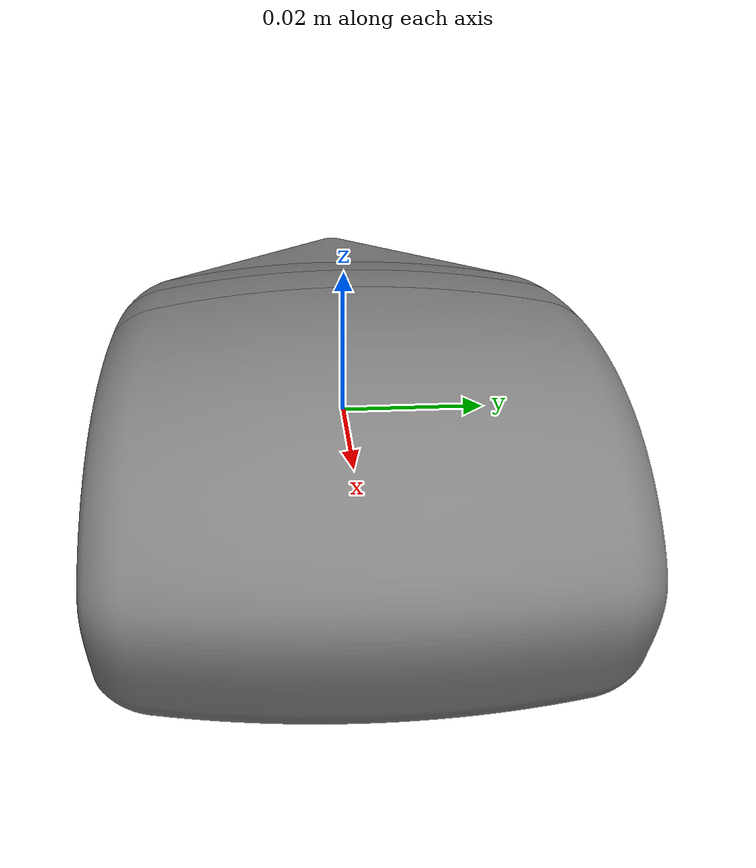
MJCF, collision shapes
<mujoco model="mouse">
  <compiler meshdir="."/>

  <asset>
    <mesh name="mouse" file="mouse.stl"/>
    <mesh name="mouse_collision_hull_000" file="mouse_collision_hull_000.stl"/>
    <mesh name="mouse_collision_hull_001" file="mouse_collision_hull_001.stl"/>
    <mesh name="mouse_collision_hull_002" file="mouse_collision_hull_002.stl"/>
    <mesh name="mouse_collision_hull_003" file="mouse_collision_hull_003.stl"/>
    <mesh name="mouse_collision_hull_004" file="mouse_collision_hull_004.stl"/>
    <mesh name="mouse_collision_hull_005" file="mouse_collision_hull_005.stl"/>
    <mesh name="mouse_collision_hull_006" file="mouse_collision_hull_006.stl"/>
  </asset>

  <worldbody>
    <body name="object">
      <freejoint name="object_joint"/>
      <geom name="object_visual" type="mesh" mesh="mouse"
            contype="0" conaffinity="0" group="2" rgba="0.9 0.9 0.8 1" mass="0"/>
      <geom name="mouse_collision_hull_000_collision" type="mesh" mesh="mouse_collision_hull_000"
            mass="0.0071" condim="6" friction="1.0 0.002 0.002" priority="1"/>
      <geom name="mouse_collision_hull_001_collision" type="mesh" mesh="mouse_collision_hull_001"
            mass="0.0071" condim="6" friction="1.0 0.002 0.002" priority="1"/>
      <geom name="mouse_collision_hull_002_collision" type="mesh" mesh="mouse_collision_hull_002"
            mass="0.0071" condim="6" friction="1.0 0.002 0.002" priority="1"/>
      <geom name="mouse_collision_hull_003_collision" type="mesh" mesh="mouse_collision_hull_003"
            mass="0.0071" condim="6" friction="1.0 0.002 0.002" priority="1"/>
      <geom name="mouse_collision_hull_004_collision" type="mesh" mesh="mouse_collision_hull_004"
            mass="0.0071" condim="6" friction="1.0 0.002 0.002" priority="1"/>
      <geom name="mouse_collision_hull_005_collision" type="mesh" mesh="mouse_collision_hull_005"
            mass="0.0071" condim="6" friction="1.0 0.002 0.002" priority="1"/>
      <geom name="mouse_collision_hull_006_collision" type="mesh" mesh="mouse_collision_hull_006"
            mass="0.0071" condim="6" friction="1.0 0.002 0.002" priority="1"/>
    </body>
  </worldbody>
</mujoco>
